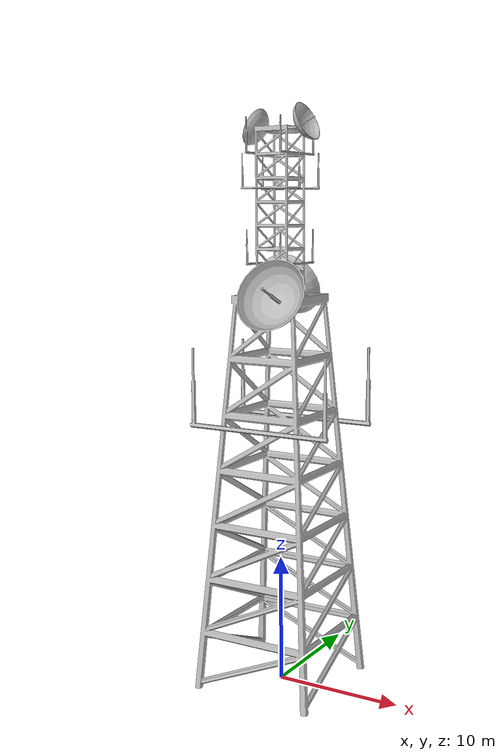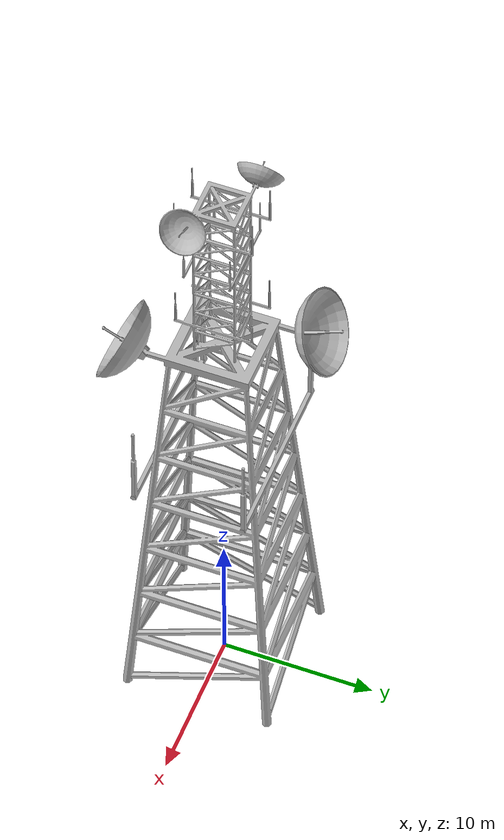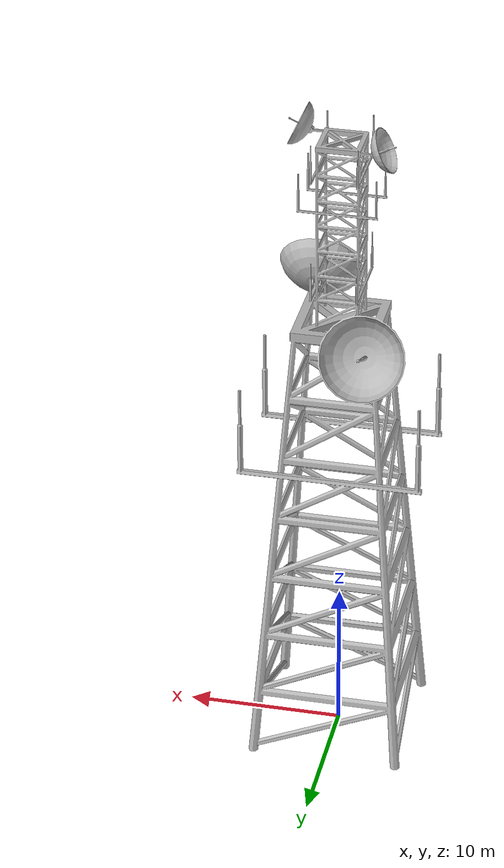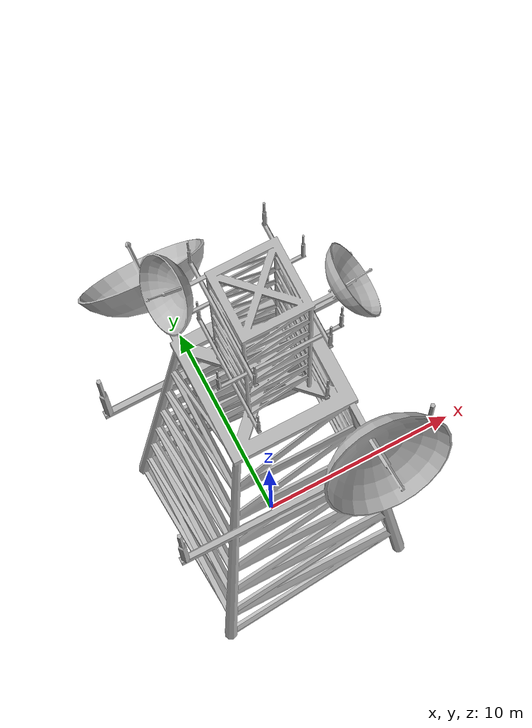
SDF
<?xml version="1.0" ?>
<sdf version="1.6">
  <model name="radio_tower">
    <static>true</static>
    <link name="link">
      <collision name="collision">
        <pose>0 0 22.5 0 0 0</pose>
        <geometry>
          <cylinder>
            <radius>0.5</radius>
            <length>45.0</length>
          </cylinder>
        </geometry>
      </collision>
      <visual name="visual">
        <geometry>
          <mesh>
            <uri>model://radio_tower/meshes/radio_tower.dae</uri>
          </mesh>
        </geometry>
      </visual>
    </link>
  </model>
</sdf>
